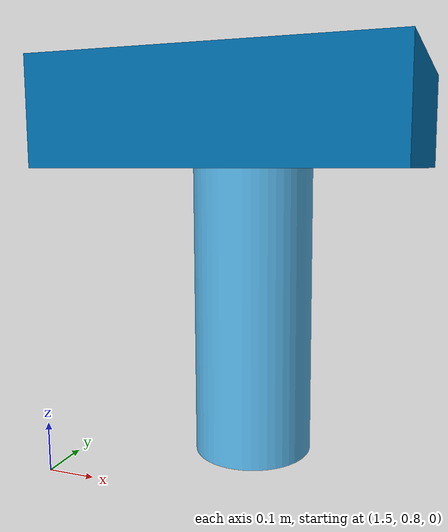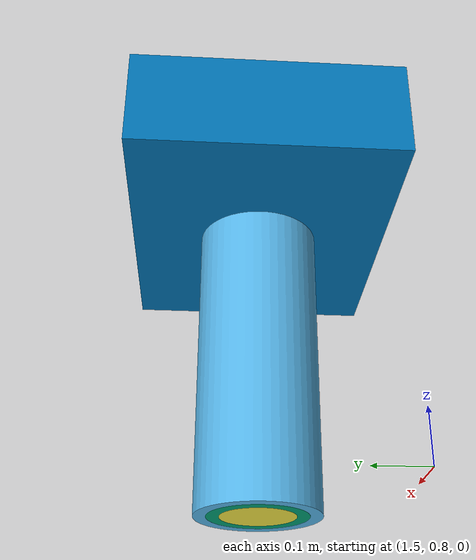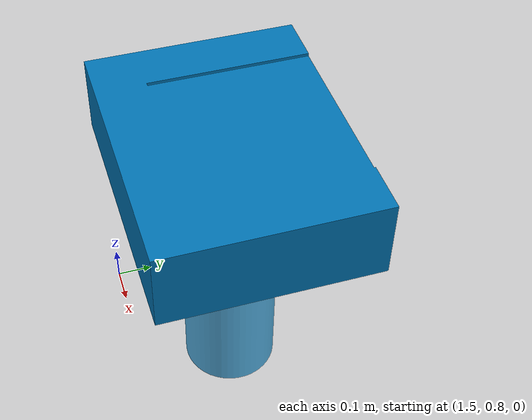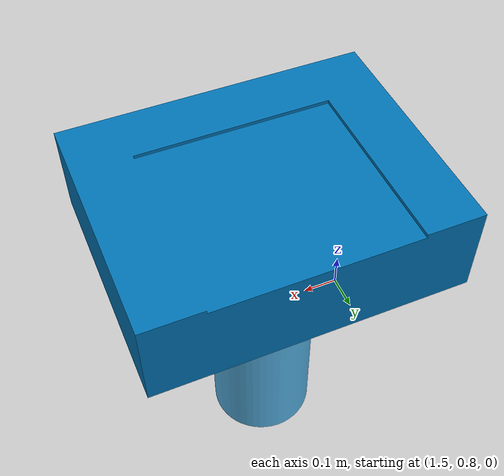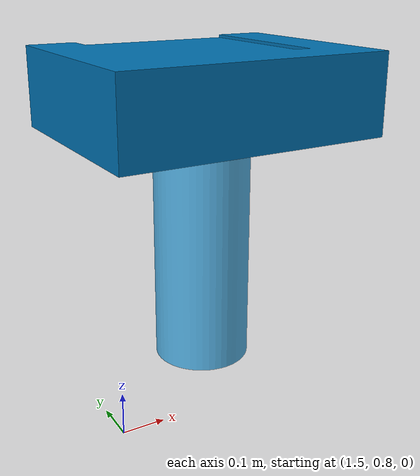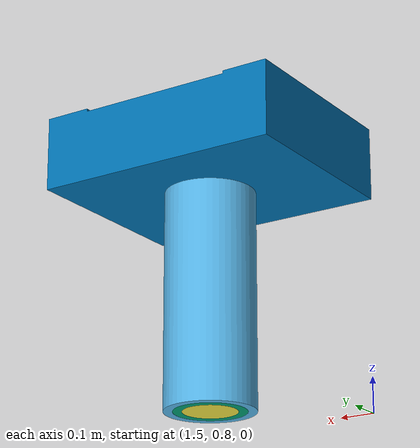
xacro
<?xml version="1.0"?>
<robot name="vertical_lift" xmlns:xacro="http://www.ros.org/wiki/xacro">
    <xacro:include
        filename="$(find mechanism_description)/urdf/vertical_lift/vertical_lift.xacro" />

    <xacro:arg name="prefix" default="" />
    <xacro:arg name="controller_yaml"
        default="$(find mechanism_description)/config/vertical_lift_controllers.yaml" />

    <link name="world" />

    <xacro:vertical_lift parent="world" prefix="$(arg prefix)">
        <origin xyz="0 0 -0.05" rpy="0 0 0" />
    </xacro:vertical_lift>

    <gazebo>
        <plugin filename="gz_ros2_control-system" name="gz_ros2_control::GazeboSimROS2ControlPlugin">
            <parameters>$(arg controller_yaml)</parameters>
        </plugin>
    </gazebo>
</robot>

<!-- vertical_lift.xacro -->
<robot xmlns:xacro="http://www.ros.org/wiki/xacro">

    <xacro:include
        filename="$(find mechanism_description)/urdf/vertical_lift/vertical_lift_macros.xacro" />
    <xacro:include
        filename="$(find mechanism_description)/urdf/vertical_lift/vertical_lift_ros2_control.xacro" />

    <xacro:property name="package_name" value="mechanism_description" />

    <xacro:property name="lift_min" value="0.0" />
    <xacro:property name="lift_max" value="0.45" />
    <xacro:property name="lift_vel" value="0.2" />
    <xacro:property name="lift_eff" value="5000" />

    <xacro:macro name="vertical_lift" params="parent prefix *origin">

        <!-- ================= BASE LINK & JOINT ================= -->
        <xacro:lift_link name="lift_base" prefix="${prefix}" mass="84" ixx="3.13892207"
            iyy="3.13892187" izz="1.07200081" visual_filename="slider_lift_base"
            collision_filename="slider_lift_base">
            <origin xyz="1.85000004 1.05000001 0.35500001" rpy="0 0 0" />
        </xacro:lift_link>

        <xacro:lift_joint name="lift_base" prefix="${prefix}" type="fixed" parent="${parent}">
            <xacro:insert_block name="origin" />
        </xacro:lift_joint>

        <!-- ================= MID LINK & JOINT ================= -->
        <xacro:lift_link name="lift_mid" prefix="${prefix}" mass="84" ixx="2.27709013"
            iyy="2.27709005" izz="0.507751779" visual_filename="slider_lift_mid"
            collision_filename="slider_lift_mid">
            <origin xyz="1.84999997 1.05000001 0.35500001" rpy="0 0 0" />
        </xacro:lift_link>

        <xacro:lift_joint name="lift_mid" prefix="${prefix}" type="prismatic"
            parent="${prefix}lift_base_link" lower="${lift_min}" upper="${lift_max}"
            effort="${lift_eff}" velocity="${lift_vel}" axis_xyz="0 0 1">
            <origin xyz="0 0 0 " rpy="0 0 0" />
        </xacro:lift_joint>

        <!-- ================= TOP LINK & JOINT ================= -->
        <xacro:lift_link name="lift_top" prefix="${prefix}" mass="84" ixx="2.71250789"
            iyy="2.71250797" izz="0.234331075" visual_filename="slider_lift_top"
            collision_filename="slider_lift_top">
            <origin xyz="1.85000002 1.04999999 0.35500001" rpy="0 0 0" />
        </xacro:lift_link>

        <xacro:lift_joint name="lift_top" prefix="${prefix}" type="prismatic"
            parent="${prefix}lift_mid_link" lower="${lift_min}" upper="${lift_max}"
            effort="${lift_eff}" velocity="${lift_vel}" axis_xyz="0 0 1">
            <origin xyz="0 0 0 " rpy="0 0 0" />
        </xacro:lift_joint>

        <!-- ================= TOP PLATE & JOINT ================= -->
        <xacro:lift_link name="lift_plate" prefix="${prefix}" mass="61" ixx="1.76610152"
            iyy="2.74538723" izz="4.08460247" visual_filename="slider_lift_plate"
            collision_filename="slider_lift_plate">
            <origin xyz="1.85000002 1.04877745 0.76211913" rpy="0 0 0" />
        </xacro:lift_link>

        <xacro:lift_joint name="lift_plate" prefix="${prefix}" type="fixed"
            parent="${prefix}lift_top_link">
            <origin xyz="0 0 0 " rpy="0 0 0" />
        </xacro:lift_joint>

        <xacro:vertical_lift_ros2_control name="GazeboSimSystem" lower="${lift_min}"
            upper="${lift_max}" />

    </xacro:macro>
</robot>

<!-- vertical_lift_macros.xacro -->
<robot xmlns:xacro="http://www.ros.org/wiki/xacro">
    <xacro:macro name="lift_link"
        params="name prefix mass ixx iyy izz visual_filename collision_filename *origin">
        <link name="${prefix}${name}_link">
            <inertial>
                <xacro:insert_block name="origin" />
                <mass value="${mass}" />
                <inertia ixx="${ixx}" ixy="0" ixz="0" iyy="${iyy}" iyz="0" izz="${izz}" />
            </inertial>

            <visual>
                <geometry>
                    <mesh
                        filename="package://mechanism_description/meshes/vertical_lift/visual/${visual_filename}.obj" />
                </geometry>
            </visual>

            <collision>
                <geometry>
                    <mesh
                        filename="package://mechanism_description/meshes/vertical_lift/collision/${collision_filename}.stl" />
                </geometry>
            </collision>
        </link>
    </xacro:macro>

    <xacro:macro name="lift_joint"
        params="name prefix type parent lower:=0 upper:=0 effort:=0 velocity:=0 axis_xyz:='0 0 1' *origin">
        <joint name="${prefix}${name}_joint" type="${type}">
            <parent link="${parent}" />
            <child link="${prefix}${name}_link" />

            <xacro:insert_block name="origin" />

            <xacro:unless value="${type == 'fixed'}">
                <axis xyz="${axis_xyz}" />
                <limit lower="${lower}" upper="${upper}" effort="${effort}" velocity="${velocity}" />
            </xacro:unless>

        </joint>
    </xacro:macro>

</robot>
